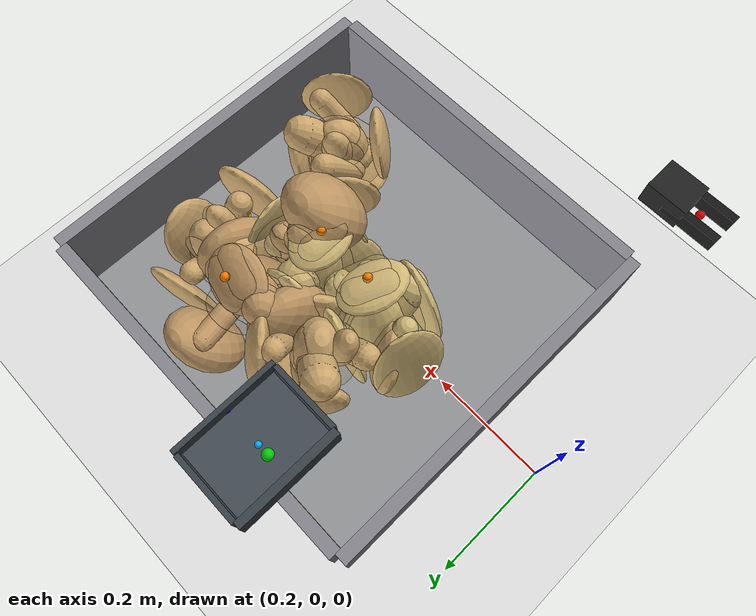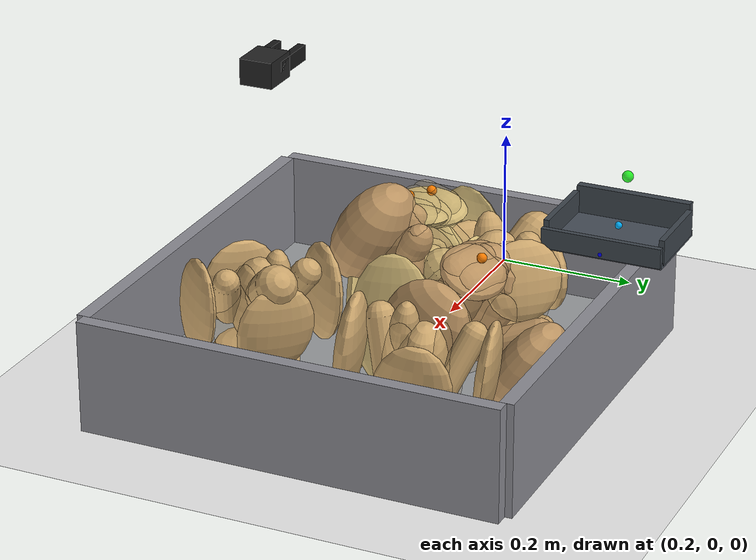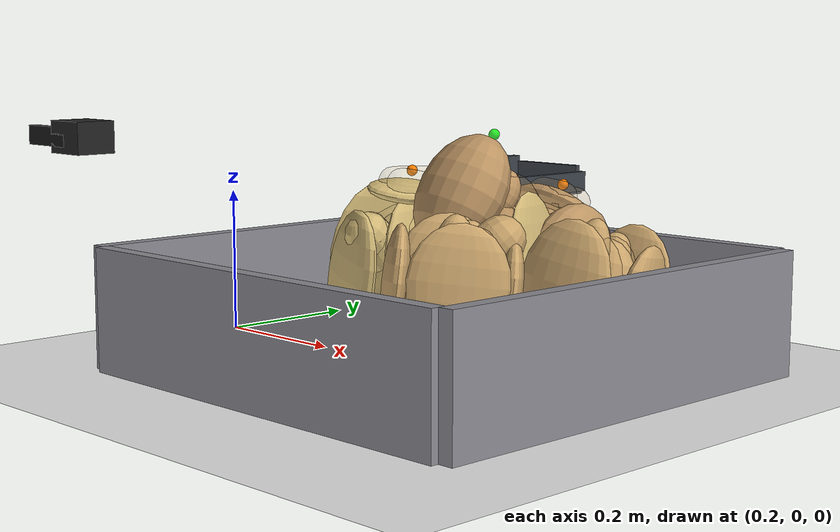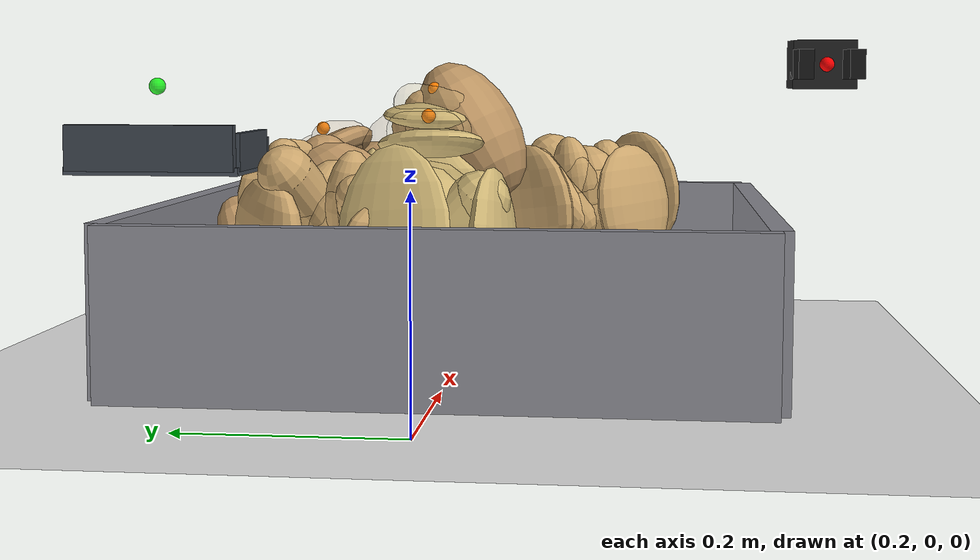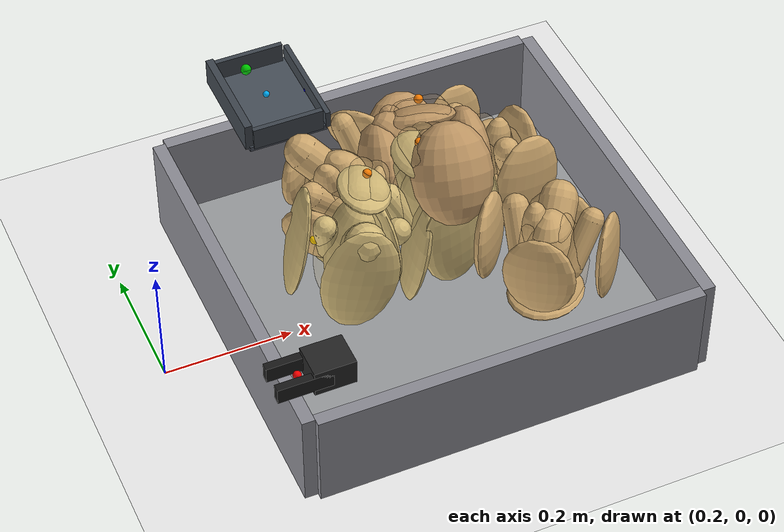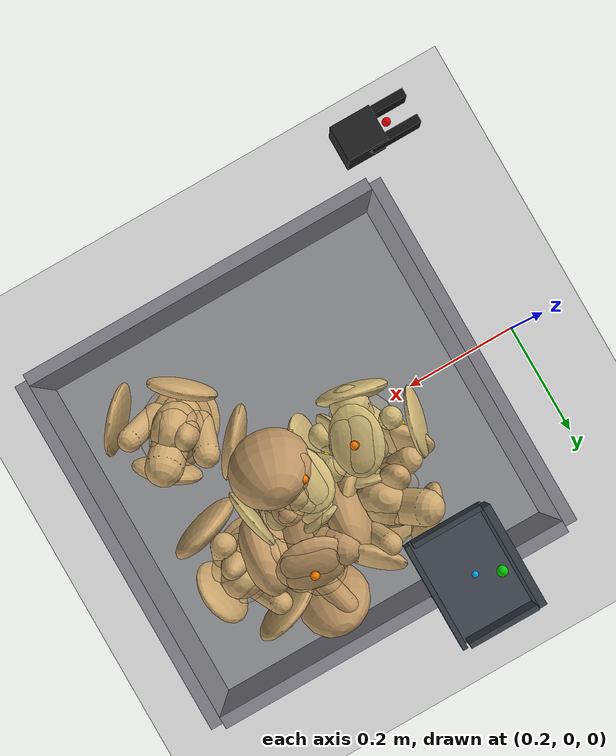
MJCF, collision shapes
<mujoco model="fixed_2f_scoop_pose_seed11">
  <compiler angle="radian" coordinate="local" inertiafromgeom="true" meshdir="D:/Michael/2025/01.Research/01.Parceldetection/16.Pybullet/bullet3-master (1)/bullet3-master/examples/pybullet/examples/DeformableTest/Sackcodex2/object"/>
  <option timestep="0.002" gravity="0 0 -9.81" integrator="implicitfast" iterations="100" tolerance="1e-8"/>
  <size memory="768M" nconmax="12000"/>

  <visual>
    <global azimuth="128" elevation="-20"/>
    <headlight ambient="0.34 0.34 0.34" diffuse="0.78 0.78 0.78" specular="0.15 0.15 0.15"/>
    <rgba haze="0.11 0.13 0.18 1"/>
  </visual>

  <default>
    <geom condim="4" friction="1.15 0.03 0.01" margin="0.003" solimp="0.93 0.98 0.003" solref="0.012 1"/>
    <joint damping="1.2" armature="0.002"/>
    <position kp="2500" forcelimited="true" forcerange="-420 420"/>
    <motor ctrllimited="true"/>
  </default>

  <asset>
    <mesh name="sack_0_visual_mesh" file="sack9.obj" scale="0.0699 0.0699 0.0762"/>
    <mesh name="sack_1_visual_mesh" file="sack.obj" scale="0.0719 0.0719 0.0732"/>
    <mesh name="sack_2_visual_mesh" file="sack7.obj" scale="0.0720 0.0720 0.0788"/>
    <mesh name="sack_3_visual_mesh" file="sack3.obj" scale="0.0765 0.0765 0.0788"/>
    <mesh name="sack_4_visual_mesh" file="sack.obj" scale="0.0688 0.0688 0.0715"/>
    <mesh name="sack_5_visual_mesh" file="sack.obj" scale="0.0686 0.0686 0.0700"/>
  </asset>

  <worldbody>
    <light name="key" pos="0.85 0.15 1.8" dir="-0.2 -0.1 -1" directional="true"/>
    <geom name="floor" type="plane" size="2 2 0.1" rgba="0.93 0.93 0.93 1"/>
    <geom name="work_pad" type="box" pos="0.62 0 0.012" size="0.30 0.30 0.012" rgba="0.60 0.61 0.62 1" friction="1.4 0.05 0.01"/>
    <geom name="corral_front" type="box" pos="0.93 0.00 0.08" size="0.010 0.30 0.08" rgba="0.55 0.55 0.58 0.22" friction="1.0 0.03 0.01"/>
    <geom name="corral_back" type="box" pos="0.31 0.00 0.08" size="0.010 0.30 0.08" rgba="0.55 0.55 0.58 0.18" friction="1.0 0.03 0.01"/>
    <geom name="corral_left" type="box" pos="0.62 0.30 0.08" size="0.30 0.010 0.08" rgba="0.55 0.55 0.58 0.14" friction="1.0 0.03 0.01"/>
    <geom name="corral_right" type="box" pos="0.62 -0.30 0.08" size="0.30 0.010 0.08" rgba="0.55 0.55 0.58 0.14" friction="1.0 0.03 0.01"/>
    <camera name="overview" pos="1.22 0.00 0.92" xyaxes="0 1 0 -0.46 0 0.88"/>

    <body name="gripper_mocap" mocap="true" pos="0.36 -0.33 0.30" quat="0.707107 0 -0.707107 0"/>
    <body name="scoop_mocap" mocap="true" pos="0.42 0.28 0.20" quat="1 0 0 0"/>

    <body name="gripper_ctrl_base" pos="0.36 -0.33 0.30">
      <inertial pos="0 0 0" mass="0.001" diaginertia="1e-6 1e-6 1e-6"/>
      <joint name="gripper_ctrl_x" type="slide" axis="1 0 0" limited="true" range="0.20 1.00"/>
      <body name="gripper_ctrl_y_body">
        <inertial pos="0 0 0" mass="0.001" diaginertia="1e-6 1e-6 1e-6"/>
        <joint name="gripper_ctrl_y" type="slide" axis="0 1 0" limited="true" range="-0.60 0.60"/>
        <body name="gripper_ctrl_z_body">
          <inertial pos="0 0 0" mass="0.001" diaginertia="1e-6 1e-6 1e-6"/>
          <joint name="gripper_ctrl_z" type="slide" axis="0 0 1" limited="true" range="0.04 0.70"/>
          <body name="gripper_ctrl_yaw_body">
            <inertial pos="0 0 0" mass="0.001" diaginertia="1e-6 1e-6 1e-6"/>
            <joint name="gripper_ctrl_yaw" type="hinge" axis="0 0 1" limited="true" range="-3.1416 3.1416"/>
            <body name="gripper_ctrl_pitch_body">
              <inertial pos="0 0 0" mass="0.001" diaginertia="1e-6 1e-6 1e-6"/>
              <joint name="gripper_ctrl_pitch" type="hinge" axis="0 1 0" limited="true" range="-3.1416 3.1416"/>
              <body name="gripper_ctrl_roll_body">
                <inertial pos="0 0 0" mass="0.001" diaginertia="1e-6 1e-6 1e-6"/>
                <joint name="gripper_ctrl_roll" type="hinge" axis="1 0 0" limited="true" range="-3.1416 3.1416"/>
              </body>
            </body>
          </body>
        </body>
      </body>
    </body>

    <body name="scoop_ctrl_base" pos="0.42 0.28 0.20">
      <inertial pos="0 0 0" mass="0.001" diaginertia="1e-6 1e-6 1e-6"/>
      <joint name="scoop_ctrl_x" type="slide" axis="1 0 0" limited="true" range="0.20 1.00"/>
      <body name="scoop_ctrl_y_body">
        <inertial pos="0 0 0" mass="0.001" diaginertia="1e-6 1e-6 1e-6"/>
        <joint name="scoop_ctrl_y" type="slide" axis="0 1 0" limited="true" range="-0.60 0.60"/>
        <body name="scoop_ctrl_z_body">
          <inertial pos="0 0 0" mass="0.001" diaginertia="1e-6 1e-6 1e-6"/>
          <joint name="scoop_ctrl_z" type="slide" axis="0 0 1" limited="true" range="0.04 0.70"/>
          <body name="scoop_ctrl_yaw_body">
            <inertial pos="0 0 0" mass="0.001" diaginertia="1e-6 1e-6 1e-6"/>
            <joint name="scoop_ctrl_yaw" type="hinge" axis="0 0 1" limited="true" range="-3.1416 3.1416"/>
            <body name="scoop_ctrl_pitch_body">
              <inertial pos="0 0 0" mass="0.001" diaginertia="1e-6 1e-6 1e-6"/>
              <joint name="scoop_ctrl_pitch" type="hinge" axis="0 1 0" limited="true" range="-3.1416 3.1416"/>
              <body name="scoop_ctrl_roll_body">
                <inertial pos="0 0 0" mass="0.001" diaginertia="1e-6 1e-6 1e-6"/>
                <joint name="scoop_ctrl_roll" type="hinge" axis="1 0 0" limited="true" range="-3.1416 3.1416"/>
              </body>
            </body>
          </body>
        </body>
      </body>
    </body>

    <body name="gripper_tool" pos="0.36 -0.33 0.30" quat="0.707107 0 -0.707107 0">
      <freejoint name="gripper_tool_free"/>
      <inertial pos="0 0 0.04" mass="0.08" diaginertia="0.0002 0.0002 0.0002"/>
      <geom name="gripper_palm" type="box" pos="0 0 0.030" size="0.020 0.026 0.030" rgba="0.14 0.14 0.14 1"/>
      <body name="left_finger_body" pos="0 0 0.072">
        <joint name="left_finger_slide" type="slide" axis="0 1 0" limited="true" range="0.010 0.040" damping="12"/>
        <geom name="left_finger_geom" type="box" pos="0 0.020 0" size="0.012 0.006 0.040" rgba="0.10 0.10 0.10 1" friction="2.2 0.05 0.01"/>
      </body>
      <body name="right_finger_body" pos="0 0 0.072">
        <joint name="right_finger_slide" type="slide" axis="0 -1 0" limited="true" range="0.010 0.040" damping="12"/>
        <geom name="right_finger_geom" type="box" pos="0 -0.020 0" size="0.012 0.006 0.040" rgba="0.10 0.10 0.10 1" friction="2.2 0.05 0.01"/>
      </body>
      <site name="gripper_pinch_site" pos="0 0 0.074" size="0.006" rgba="1 0 0 1"/>
    </body>

    <body name="scoop_tool" pos="0.42 0.28 0.20" quat="1 0 0 0">
      <freejoint name="scoop_tool_free"/>
      <inertial pos="0 0 0.02" mass="0.10" diaginertia="0.0003 0.0003 0.0003"/>
      <geom name="scoop_plate" type="box" pos="0.062 0 0" size="0.062 0.085 0.004" rgba="0.28 0.31 0.35 1" friction="1.7 0.05 0.01"/>
      <geom name="scoop_lip" type="box" pos="0.126 0 0.014" size="0.004 0.085 0.014" rgba="0.24 0.27 0.30 1" friction="1.7 0.05 0.01"/>
      <geom name="scoop_left_rail" type="box" pos="0.062 0.082 0.018" size="0.056 0.004 0.018" rgba="0.24 0.27 0.30 1"/>
      <geom name="scoop_right_rail" type="box" pos="0.062 -0.082 0.018" size="0.056 0.004 0.018" rgba="0.24 0.27 0.30 1"/>
      <geom name="scoop_backstop" type="box" pos="0.000 0 0.022" size="0.006 0.082 0.022" rgba="0.24 0.27 0.30 1"/>
      <site name="scoop_tip_site" pos="0.126 0 0.005" size="0.005" rgba="0 0 1 1"/>
      <site name="scoop_center_site" pos="0.060 0 0.020" size="0.005" rgba="0 0.7 1 1"/>
      <site name="score_overlay_site" pos="0.030 0 0.080" size="0.008" rgba="0 1 0 0.8"/>
    </body>

    <body name="sack_0" pos="0.6456 0.0425 0.1207" euler="0.0365 -0.1004 1.7669">
      <freejoint name="sack_0_free"/>

      <geom name="sack_0_visual" type="mesh" mesh="sack_0_visual_mesh" rgba="0.840 0.740 0.480 0.92" contype="0" conaffinity="0"/>
      <site name="sack_0_center_site" pos="0 0 0.000" size="0.006" rgba="0 1 0 1"/>
      <site name="sack_0_top_site" pos="-0.0009 0.0062 0.1566" size="0.007" rgba="1 0.5 0 1"/>
      <site name="sack_0_side_site" pos="-0.0022 0.0621 0.018" size="0.007" rgba="1 0.8 0 1"/>

      <geom name="sack_0_core_geom" type="ellipsoid" pos="0 0 0.0059" size="0.0517 0.0438 0.0895" mass="1.2135" rgba="0.840 0.740 0.480 0.12" friction="1.0 0.03 0.01"/>
      <geom name="sack_0_core_front" type="capsule" fromto="-0.0262 0 -0.0180 0.0478 0 0.0580" size="0.0307" mass="0.2889" rgba="0.840 0.740 0.480 0.10"/>
      <geom name="sack_0_core_left" type="capsule" fromto="-0.016 0.0345 -0.012 0.020 0.0557 0.054" size="0.0201" mass="0.5201" rgba="0.840 0.740 0.480 0.10"/>
      <geom name="sack_0_core_right" type="capsule" fromto="-0.016 -0.0345 -0.012 0.020 -0.0557 0.054" size="0.0181" mass="0.5201" rgba="0.840 0.740 0.480 0.10"/>

      <!-- 자루의 외형은 둥근 shell lobe로 보이게 하고, contact proxy는 반투명하게 숨긴다. -->
      <geom name="sack_0_shell_main_visual" type="ellipsoid" pos="-0.0011 0.0003 -0.0003" size="0.0687 0.0585 0.1024" rgba="0.840 0.740 0.480 0.16" contype="0" conaffinity="0"/>
      <geom name="sack_0_shell_left_visual" type="ellipsoid" pos="0.0040 0.0263 0.0020" size="0.0467 0.0199 0.0840" rgba="0.840 0.740 0.480 0.14" contype="0" conaffinity="0"/>
      <geom name="sack_0_shell_right_visual" type="ellipsoid" pos="0.0040 -0.0159 0.0000" size="0.0440 0.0158 0.0819" rgba="0.840 0.740 0.480 0.12" contype="0" conaffinity="0"/>
      <geom name="sack_0_top_left_crown_visual" type="capsule" fromto="-0.0219 0.0144 0.1388 0.0219 0.0072 0.1428" size="0.0196" rgba="0.840 0.740 0.480 0.14" contype="0" conaffinity="0"/>
      <geom name="sack_0_top_right_crown_visual" type="capsule" fromto="-0.0219 -0.0072 0.1428 0.0219 -0.0144 0.1388" size="0.0196" rgba="0.840 0.740 0.480 0.14" contype="0" conaffinity="0"/>

      <body name="sack_0_bottom_support_proxy_body" pos="-0.0004 0.0051 -0.1049">
        <joint name="sack_0_bottom_x" type="slide" axis="1 0 0" limited="true" range="-0.012 0.012" damping="18" stiffness="509.9"/>
        <joint name="sack_0_bottom_y" type="slide" axis="0 1 0" limited="true" range="-0.012 0.012" damping="18" stiffness="509.9"/>
        <joint name="sack_0_bottom_z" type="slide" axis="0 0 1" limited="true" range="-0.008 0.020" damping="24" stiffness="627.7"/>
        <geom name="sack_0_bottom_support_proxy" type="ellipsoid" size="0.0705 0.0600 0.0123" mass="0.2311" rgba="0.840 0.740 0.480 0.10" friction="1.55 0.05 0.01"/>
      </body>

      <body name="sack_0_top_grasp_proxy_body" pos="-0.0022 0.0062 0.1286">
        <joint name="sack_0_top_x" type="slide" axis="1 0 0" limited="true" range="-0.018 0.018" damping="12" stiffness="196.1"/>
        <joint name="sack_0_top_y" type="slide" axis="0 1 0" limited="true" range="-0.018 0.018" damping="12" stiffness="196.1"/>
        <joint name="sack_0_top_z" type="slide" axis="0 0 1" limited="true" range="-0.040 0.010" damping="14" stiffness="146.6"/>
        <geom name="sack_0_top_grasp_proxy" type="ellipsoid" size="0.0546 0.0400 0.0135" mass="0.1734" rgba="0.840 0.740 0.480 0.10" friction="2.2 0.05 0.01"/>
      </body>

      <body name="sack_0_left_side_proxy_body" pos="-0.0004 0.0963 0.010">
        <joint name="sack_0_left_side_slide" type="slide" axis="0 -1 0" limited="true" range="-0.028 0.016" damping="16" stiffness="263.0"/>
        <geom name="sack_0_left_side_proxy" type="ellipsoid" size="0.0606 0.0152 0.0969" mass="0.1734" rgba="0.840 0.740 0.480 0.08" friction="1.25 0.04 0.01"/>
      </body>

      <body name="sack_0_right_side_proxy_body" pos="-0.0004 -0.0859 0.010">
        <joint name="sack_0_right_side_slide" type="slide" axis="0 1 0" limited="true" range="-0.028 0.016" damping="16" stiffness="243.6"/>
        <geom name="sack_0_right_side_proxy" type="ellipsoid" size="0.0582 0.0118 0.0950" mass="0.1734" rgba="0.840 0.740 0.480 0.08" friction="1.25 0.04 0.01"/>
      </body>

      <body name="sack_0_front_proxy_body" pos="0.0624 0.0001 0.000">
        <joint name="sack_0_front_slide" type="slide" axis="-1 0 0" limited="true" range="-0.022 0.012" damping="15" stiffness="245.0"/>
        <geom name="sack_0_front_support_proxy" type="ellipsoid" size="0.0161 0.0580 0.0929" mass="0.1445" rgba="0.840 0.740 0.480 0.08" friction="1.20 0.04 0.01"/>
      </body>

      <body name="sack_0_back_proxy_body" pos="-0.0655 0.0001 0.000">
        <joint name="sack_0_back_slide" type="slide" axis="1 0 0" limited="true" range="-0.022 0.012" damping="15" stiffness="225.5"/>
        <geom name="sack_0_back_support_proxy" type="ellipsoid" size="0.0148 0.0580 0.0929" mass="0.1445" rgba="0.840 0.740 0.480 0.08" friction="1.20 0.04 0.01"/>
      </body>

      <body name="sack_0_shape_proxy_body" pos="-0.0013 0.0213 0.0209">
        <joint name="sack_0_bulge_y" type="slide" axis="0 1 0" limited="true" range="-0.020 0.020" damping="8" stiffness="66.7"/>
        <joint name="sack_0_bulge_z" type="slide" axis="0 0 1" limited="true" range="-0.014 0.028" damping="8" stiffness="75.0"/>
        <geom name="sack_0_shape_proxy" type="ellipsoid" size="0.0241 0.0202 0.0295" mass="0.1156" rgba="0.840 0.740 0.480 0.10"/>
      </body>
    </body>

    <body name="sack_1" pos="0.5453 0.1326 0.1396" euler="0.1709 -0.1908 2.3849">
      <freejoint name="sack_1_free"/>

      <geom name="sack_1_visual" type="mesh" mesh="sack_1_visual_mesh" rgba="0.820 0.670 0.440 0.92" contype="0" conaffinity="0"/>
      <site name="sack_1_center_site" pos="0 0 0.000" size="0.006" rgba="0 1 0 1"/>
      <site name="sack_1_top_site" pos="0.0039 0.0069 -0.0082" size="0.007" rgba="1 0.5 0 1"/>
      <site name="sack_1_side_site" pos="0.0097 0.0611 0.018" size="0.007" rgba="1 0.8 0 1"/>

      <geom name="sack_1_core_geom" type="ellipsoid" pos="0 0 0.0055" size="0.0448 0.0356 0.0627" mass="0.6674" rgba="0.820 0.670 0.440 0.12" friction="1.0 0.03 0.01"/>
      <geom name="sack_1_core_front" type="capsule" fromto="-0.0143 0 -0.0180 0.0597 0 0.0580" size="0.0282" mass="0.1589" rgba="0.820 0.670 0.440 0.10"/>
      <geom name="sack_1_core_left" type="capsule" fromto="-0.016 0.0386 -0.012 0.020 0.0651 0.054" size="0.0202" mass="0.2860" rgba="0.820 0.670 0.440 0.10"/>
      <geom name="sack_1_core_right" type="capsule" fromto="-0.016 -0.0386 -0.012 0.020 -0.0651 0.054" size="0.0182" mass="0.2860" rgba="0.820 0.670 0.440 0.10"/>

      <!-- 자루의 외형은 둥근 shell lobe로 보이게 하고, contact proxy는 반투명하게 숨긴다. -->
      <geom name="sack_1_shell_main_visual" type="ellipsoid" pos="0.0049 0.0014 -0.0276" size="0.0680 0.0553 0.0693" rgba="0.820 0.670 0.440 0.16" contype="0" conaffinity="0"/>
      <geom name="sack_1_shell_left_visual" type="ellipsoid" pos="0.0040 0.0380 0.0020" size="0.0462 0.0264 0.0568" rgba="0.820 0.670 0.440 0.14" contype="0" conaffinity="0"/>
      <geom name="sack_1_shell_right_visual" type="ellipsoid" pos="0.0040 -0.0177 0.0000" size="0.0435 0.0187 0.0554" rgba="0.820 0.670 0.440 0.12" contype="0" conaffinity="0"/>
      <geom name="sack_1_top_left_crown_visual" type="capsule" fromto="-0.0213 0.0128 -0.0475 0.0213 0.0064 -0.0435" size="0.0204" rgba="0.820 0.670 0.440 0.14" contype="0" conaffinity="0"/>
      <geom name="sack_1_top_right_crown_visual" type="capsule" fromto="-0.0213 -0.0064 -0.0435 0.0213 -0.0128 -0.0475" size="0.0204" rgba="0.820 0.670 0.440 0.14" contype="0" conaffinity="0"/>

      <body name="sack_1_bottom_support_proxy_body" pos="0.0018 -0.0061 -0.0652">
        <joint name="sack_1_bottom_x" type="slide" axis="1 0 0" limited="true" range="-0.012 0.012" damping="18" stiffness="437.0"/>
        <joint name="sack_1_bottom_y" type="slide" axis="0 1 0" limited="true" range="-0.012 0.012" damping="18" stiffness="437.0"/>
        <joint name="sack_1_bottom_z" type="slide" axis="0 0 1" limited="true" range="-0.008 0.020" damping="24" stiffness="538.6"/>
        <geom name="sack_1_bottom_support_proxy" type="ellipsoid" size="0.0692 0.0555 0.0148" mass="0.1271" rgba="0.820 0.670 0.440 0.10" friction="1.55 0.05 0.01"/>
      </body>

      <body name="sack_1_top_grasp_proxy_body" pos="0.0097 0.0070 -0.0362">
        <joint name="sack_1_top_x" type="slide" axis="1 0 0" limited="true" range="-0.018 0.018" damping="12" stiffness="167.7"/>
        <joint name="sack_1_top_y" type="slide" axis="0 1 0" limited="true" range="-0.018 0.018" damping="12" stiffness="167.7"/>
        <joint name="sack_1_top_z" type="slide" axis="0 0 1" limited="true" range="-0.040 0.010" damping="14" stiffness="122.3"/>
        <geom name="sack_1_top_grasp_proxy" type="ellipsoid" size="0.0532 0.0355 0.0311" mass="0.0953" rgba="0.820 0.670 0.440 0.10" friction="2.2 0.05 0.01"/>
      </body>

      <body name="sack_1_left_side_proxy_body" pos="0.0016 0.1034 0.010">
        <joint name="sack_1_left_side_slide" type="slide" axis="0 -1 0" limited="true" range="-0.028 0.016" damping="16" stiffness="212.9"/>
        <geom name="sack_1_left_side_proxy" type="ellipsoid" size="0.0592 0.0205 0.0572" mass="0.0953" rgba="0.820 0.670 0.440 0.08" friction="1.25 0.04 0.01"/>
      </body>

      <body name="sack_1_right_side_proxy_body" pos="0.0016 -0.0832 0.010">
        <joint name="sack_1_right_side_slide" type="slide" axis="0 1 0" limited="true" range="-0.028 0.016" damping="16" stiffness="197.5"/>
        <geom name="sack_1_right_side_proxy" type="ellipsoid" size="0.0569 0.0160 0.0561" mass="0.0953" rgba="0.820 0.670 0.440 0.08" friction="1.25 0.04 0.01"/>
      </body>

      <body name="sack_1_front_proxy_body" pos="0.0730 0.0005 0.000">
        <joint name="sack_1_front_slide" type="slide" axis="-1 0 0" limited="true" range="-0.022 0.012" damping="15" stiffness="208.5"/>
        <geom name="sack_1_front_support_proxy" type="ellipsoid" size="0.0197 0.0535 0.0532" mass="0.0795" rgba="0.820 0.670 0.440 0.08" friction="1.20 0.04 0.01"/>
      </body>

      <body name="sack_1_back_proxy_body" pos="-0.0593 0.0005 0.000">
        <joint name="sack_1_back_slide" type="slide" axis="1 0 0" limited="true" range="-0.022 0.012" damping="15" stiffness="193.1"/>
        <geom name="sack_1_back_support_proxy" type="ellipsoid" size="0.0181 0.0535 0.0532" mass="0.0795" rgba="0.820 0.670 0.440 0.08" friction="1.20 0.04 0.01"/>
      </body>

      <body name="sack_1_shape_proxy_body" pos="0.0058 0.0340 0.0420">
        <joint name="sack_1_bulge_y" type="slide" axis="0 1 0" limited="true" range="-0.020 0.020" damping="8" stiffness="115.3"/>
        <joint name="sack_1_bulge_z" type="slide" axis="0 0 1" limited="true" range="-0.014 0.028" damping="8" stiffness="111.5"/>
        <geom name="sack_1_shape_proxy" type="ellipsoid" size="0.0242 0.0205 0.0471" mass="0.0636" rgba="0.820 0.670 0.440 0.10"/>
      </body>
    </body>

    <body name="sack_2" pos="0.5142 0.0286 0.1070" euler="-0.0137 0.2185 -1.8239">
      <freejoint name="sack_2_free"/>

      <geom name="sack_2_visual" type="mesh" mesh="sack_2_visual_mesh" rgba="0.840 0.740 0.480 0.92" contype="0" conaffinity="0"/>
      <site name="sack_2_center_site" pos="0 0 0.000" size="0.006" rgba="0 1 0 1"/>
      <site name="sack_2_top_site" pos="0.0020 -0.0061 0.1449" size="0.007" rgba="1 0.5 0 1"/>
      <site name="sack_2_side_site" pos="0.0049 -0.0623 0.018" size="0.007" rgba="1 0.8 0 1"/>

      <geom name="sack_2_core_geom" type="ellipsoid" pos="0 0 0.0059" size="0.0518 0.0440 0.0898" mass="0.9698" rgba="0.840 0.740 0.480 0.12" friction="1.0 0.03 0.01"/>
      <geom name="sack_2_core_front" type="capsule" fromto="-0.0191 0 -0.0180 0.0549 0 0.0580" size="0.0308" mass="0.2309" rgba="0.840 0.740 0.480 0.10"/>
      <geom name="sack_2_core_left" type="capsule" fromto="-0.016 0.0342 -0.012 0.020 0.0551 0.054" size="0.0201" mass="0.4156" rgba="0.840 0.740 0.480 0.10"/>
      <geom name="sack_2_core_right" type="capsule" fromto="-0.016 -0.0342 -0.012 0.020 -0.0551 0.054" size="0.0181" mass="0.4156" rgba="0.840 0.740 0.480 0.10"/>

      <!-- 자루의 외형은 둥근 shell lobe로 보이게 하고, contact proxy는 반투명하게 숨긴다. -->
      <geom name="sack_2_shell_main_visual" type="ellipsoid" pos="0.0024 -0.0001 -0.0001" size="0.0688 0.0588 0.1008" rgba="0.840 0.740 0.480 0.16" contype="0" conaffinity="0"/>
      <geom name="sack_2_shell_left_visual" type="ellipsoid" pos="0.0040 0.0249 0.0020" size="0.0468 0.0195 0.0827" rgba="0.840 0.740 0.480 0.14" contype="0" conaffinity="0"/>
      <geom name="sack_2_shell_right_visual" type="ellipsoid" pos="0.0040 -0.0165 0.0000" size="0.0440 0.0156 0.0807" rgba="0.840 0.740 0.480 0.12" contype="0" conaffinity="0"/>
      <geom name="sack_2_top_left_crown_visual" type="capsule" fromto="-0.0219 0.0145 0.1272 0.0219 0.0073 0.1312" size="0.0196" rgba="0.840 0.740 0.480 0.14" contype="0" conaffinity="0"/>
      <geom name="sack_2_top_right_crown_visual" type="capsule" fromto="-0.0219 -0.0073 0.1312 0.0219 -0.0145 0.1272" size="0.0196" rgba="0.840 0.740 0.480 0.14" contype="0" conaffinity="0"/>

      <body name="sack_2_bottom_support_proxy_body" pos="0.0009 0.0135 -0.1031">
        <joint name="sack_2_bottom_x" type="slide" axis="1 0 0" limited="true" range="-0.012 0.012" damping="18" stiffness="513.7"/>
        <joint name="sack_2_bottom_y" type="slide" axis="0 1 0" limited="true" range="-0.012 0.012" damping="18" stiffness="513.7"/>
        <joint name="sack_2_bottom_z" type="slide" axis="0 0 1" limited="true" range="-0.008 0.020" damping="24" stiffness="632.3"/>
        <geom name="sack_2_bottom_support_proxy" type="ellipsoid" size="0.0706 0.0604 0.0122" mass="0.1847" rgba="0.840 0.740 0.480 0.10" friction="1.55 0.05 0.01"/>
      </body>

      <body name="sack_2_top_grasp_proxy_body" pos="0.0049 -0.0061 0.1169">
        <joint name="sack_2_top_x" type="slide" axis="1 0 0" limited="true" range="-0.018 0.018" damping="12" stiffness="197.5"/>
        <joint name="sack_2_top_y" type="slide" axis="0 1 0" limited="true" range="-0.018 0.018" damping="12" stiffness="197.5"/>
        <joint name="sack_2_top_z" type="slide" axis="0 0 1" limited="true" range="-0.040 0.010" damping="14" stiffness="147.9"/>
        <geom name="sack_2_top_grasp_proxy" type="ellipsoid" size="0.0548 0.0404 0.0134" mass="0.1385" rgba="0.840 0.740 0.480 0.10" friction="2.2 0.05 0.01"/>
      </body>

      <body name="sack_2_left_side_proxy_body" pos="0.0008 0.0952 0.010">
        <joint name="sack_2_left_side_slide" type="slide" axis="0 -1 0" limited="true" range="-0.028 0.016" damping="16" stiffness="265.6"/>
        <geom name="sack_2_left_side_proxy" type="ellipsoid" size="0.0608 0.0149 0.0951" mass="0.1385" rgba="0.840 0.740 0.480 0.08" friction="1.25 0.04 0.01"/>
      </body>

      <body name="sack_2_right_side_proxy_body" pos="0.0008 -0.0868 0.010">
        <joint name="sack_2_right_side_slide" type="slide" axis="0 1 0" limited="true" range="-0.028 0.016" damping="16" stiffness="245.9"/>
        <geom name="sack_2_right_side_proxy" type="ellipsoid" size="0.0583 0.0116 0.0932" mass="0.1385" rgba="0.840 0.740 0.480 0.08" friction="1.25 0.04 0.01"/>
      </body>

      <body name="sack_2_front_proxy_body" pos="0.0696 -0.0000 0.000">
        <joint name="sack_2_front_slide" type="slide" axis="-1 0 0" limited="true" range="-0.022 0.012" damping="15" stiffness="246.8"/>
        <geom name="sack_2_front_support_proxy" type="ellipsoid" size="0.0159 0.0584 0.0911" mass="0.1155" rgba="0.840 0.740 0.480 0.08" friction="1.20 0.04 0.01"/>
      </body>

      <body name="sack_2_back_proxy_body" pos="-0.0628 -0.0000 0.000">
        <joint name="sack_2_back_slide" type="slide" axis="1 0 0" limited="true" range="-0.022 0.012" damping="15" stiffness="227.2"/>
        <geom name="sack_2_back_support_proxy" type="ellipsoid" size="0.0146 0.0584 0.0911" mass="0.1155" rgba="0.840 0.740 0.480 0.08" friction="1.20 0.04 0.01"/>
      </body>

      <body name="sack_2_shape_proxy_body" pos="0.0029 -0.0205 0.0198">
        <joint name="sack_2_bulge_y" type="slide" axis="0 1 0" limited="true" range="-0.020 0.020" damping="8" stiffness="64.2"/>
        <joint name="sack_2_bulge_z" type="slide" axis="0 0 1" limited="true" range="-0.014 0.028" damping="8" stiffness="73.2"/>
        <geom name="sack_2_shape_proxy" type="ellipsoid" size="0.0241 0.0202 0.0294" mass="0.0924" rgba="0.840 0.740 0.480 0.10"/>
      </body>
    </body>

    <body name="sack_3" pos="0.6728 0.1162 0.1482" euler="-0.5385 0.0938 3.0491">
      <freejoint name="sack_3_free"/>

      <geom name="sack_3_visual" type="mesh" mesh="sack_3_visual_mesh" rgba="0.760 0.600 0.400 0.92" contype="0" conaffinity="0"/>
      <site name="sack_3_center_site" pos="0 0 0.000" size="0.006" rgba="0 1 0 1"/>
      <site name="sack_3_top_site" pos="0.0011 0.0019 0.0972" size="0.007" rgba="1 0.5 0 1"/>
      <site name="sack_3_side_site" pos="0.0028 0.0885 0.018" size="0.007" rgba="1 0.8 0 1"/>

      <geom name="sack_3_core_geom" type="ellipsoid" pos="0 0 0.0058" size="0.0432 0.0341 0.0743" mass="0.8187" rgba="0.760 0.600 0.400 0.12" friction="1.0 0.03 0.01"/>
      <geom name="sack_3_core_front" type="capsule" fromto="-0.0212 0 -0.0180 0.0528 0 0.0580" size="0.0287" mass="0.1949" rgba="0.760 0.600 0.400 0.10"/>
      <geom name="sack_3_core_left" type="capsule" fromto="-0.016 0.0598 -0.012 0.020 0.1136 0.054" size="0.0208" mass="0.3509" rgba="0.760 0.600 0.400 0.10"/>
      <geom name="sack_3_core_right" type="capsule" fromto="-0.016 -0.0598 -0.012 0.020 -0.1136 0.054" size="0.0186" mass="0.3509" rgba="0.760 0.600 0.400 0.10"/>

      <!-- 자루의 외형은 둥근 shell lobe로 보이게 하고, contact proxy는 반투명하게 숨긴다. -->
      <geom name="sack_3_shell_main_visual" type="ellipsoid" pos="0.0014 -0.0069 -0.0063" size="0.0714 0.0634 0.0878" rgba="0.760 0.600 0.400 0.16" contype="0" conaffinity="0"/>
      <geom name="sack_3_shell_left_visual" type="ellipsoid" pos="0.0040 0.0699 0.0020" size="0.0486 0.0597 0.0720" rgba="0.760 0.600 0.400 0.14" contype="0" conaffinity="0"/>
      <geom name="sack_3_shell_right_visual" type="ellipsoid" pos="0.0040 -0.0555 0.0000" size="0.0457 0.0339 0.0702" rgba="0.760 0.600 0.400 0.12" contype="0" conaffinity="0"/>
      <geom name="sack_3_top_left_crown_visual" type="capsule" fromto="-0.0227 0.0161 0.0747 0.0227 0.0080 0.0787" size="0.0207" rgba="0.760 0.600 0.400 0.14" contype="0" conaffinity="0"/>
      <geom name="sack_3_top_right_crown_visual" type="capsule" fromto="-0.0227 -0.0080 0.0787 0.0227 -0.0161 0.0747" size="0.0207" rgba="0.760 0.600 0.400 0.14" contype="0" conaffinity="0"/>

      <body name="sack_3_bottom_support_proxy_body" pos="0.0005 0.0057 -0.0865">
        <joint name="sack_3_bottom_x" type="slide" axis="1 0 0" limited="true" range="-0.012 0.012" damping="18" stiffness="450.2"/>
        <joint name="sack_3_bottom_y" type="slide" axis="0 1 0" limited="true" range="-0.012 0.012" damping="18" stiffness="450.2"/>
        <joint name="sack_3_bottom_z" type="slide" axis="0 0 1" limited="true" range="-0.008 0.020" damping="24" stiffness="554.7"/>
        <geom name="sack_3_bottom_support_proxy" type="ellipsoid" size="0.0724 0.0646 0.0143" mass="0.1559" rgba="0.760 0.600 0.400 0.10" friction="1.55 0.05 0.01"/>
      </body>

      <body name="sack_3_top_grasp_proxy_body" pos="0.0028 0.0012 0.0692">
        <joint name="sack_3_top_x" type="slide" axis="1 0 0" limited="true" range="-0.018 0.018" damping="12" stiffness="172.9"/>
        <joint name="sack_3_top_y" type="slide" axis="0 1 0" limited="true" range="-0.018 0.018" damping="12" stiffness="172.9"/>
        <joint name="sack_3_top_z" type="slide" axis="0 0 1" limited="true" range="-0.040 0.010" damping="14" stiffness="126.7"/>
        <geom name="sack_3_top_grasp_proxy" type="ellipsoid" size="0.0567 0.0446 0.0173" mass="0.1170" rgba="0.760 0.600 0.400 0.10" friction="2.2 0.05 0.01"/>
      </body>

      <body name="sack_3_left_side_proxy_body" pos="0.0004 0.1446 0.010">
        <joint name="sack_3_left_side_slide" type="slide" axis="0 -1 0" limited="true" range="-0.028 0.016" damping="16" stiffness="222.7"/>
        <geom name="sack_3_left_side_proxy" type="ellipsoid" size="0.0627 0.0478 0.0785" mass="0.1170" rgba="0.760 0.600 0.400 0.08" friction="1.25 0.04 0.01"/>
      </body>

      <body name="sack_3_right_side_proxy_body" pos="0.0004 -0.1302 0.010">
        <joint name="sack_3_right_side_slide" type="slide" axis="0 1 0" limited="true" range="-0.028 0.016" damping="16" stiffness="206.6"/>
        <geom name="sack_3_right_side_proxy" type="ellipsoid" size="0.0602 0.0373 0.0770" mass="0.1170" rgba="0.760 0.600 0.400 0.08" friction="1.25 0.04 0.01"/>
      </body>

      <body name="sack_3_front_proxy_body" pos="0.0695 -0.0022 0.000">
        <joint name="sack_3_front_slide" type="slide" axis="-1 0 0" limited="true" range="-0.022 0.012" damping="15" stiffness="215.1"/>
        <geom name="sack_3_front_support_proxy" type="ellipsoid" size="0.0379 0.0626 0.0745" mass="0.0975" rgba="0.760 0.600 0.400 0.08" friction="1.20 0.04 0.01"/>
      </body>

      <body name="sack_3_back_proxy_body" pos="-0.0656 -0.0022 0.000">
        <joint name="sack_3_back_slide" type="slide" axis="1 0 0" limited="true" range="-0.022 0.012" damping="15" stiffness="199.0"/>
        <geom name="sack_3_back_support_proxy" type="ellipsoid" size="0.0348 0.0626 0.0745" mass="0.0975" rgba="0.760 0.600 0.400 0.08" friction="1.20 0.04 0.01"/>
      </body>

      <body name="sack_3_shape_proxy_body" pos="0.0017 0.0880 0.0382">
        <joint name="sack_3_bulge_y" type="slide" axis="0 1 0" limited="true" range="-0.020 0.020" damping="8" stiffness="106.5"/>
        <joint name="sack_3_bulge_z" type="slide" axis="0 0 1" limited="true" range="-0.014 0.028" damping="8" stiffness="104.9"/>
        <geom name="sack_3_shape_proxy" type="ellipsoid" size="0.0250 0.0219 0.0333" mass="0.0780" rgba="0.760 0.600 0.400 0.10"/>
      </body>
    </body>

    <body name="sack_4" pos="0.7630 -0.1242 0.1428" euler="-0.1322 0.0312 0.8582">
      <freejoint name="sack_4_free"/>

      <geom name="sack_4_visual" type="mesh" mesh="sack_4_visual_mesh" rgba="0.820 0.670 0.440 0.92" contype="0" conaffinity="0"/>
      <site name="sack_4_center_site" pos="0 0 0.000" size="0.006" rgba="0 1 0 1"/>
      <site name="sack_4_top_site" pos="0.0003 0.0053 0.0146" size="0.007" rgba="1 0.5 0 1"/>
      <site name="sack_4_side_site" pos="0.0007 0.0601 0.018" size="0.007" rgba="1 0.8 0 1"/>

      <geom name="sack_4_core_geom" type="ellipsoid" pos="0 0 0.0055" size="0.0453 0.0364 0.0638" mass="0.7465" rgba="0.820 0.670 0.440 0.12" friction="1.0 0.03 0.01"/>
      <geom name="sack_4_core_front" type="capsule" fromto="-0.0233 0 -0.0180 0.0507 0 0.0580" size="0.0289" mass="0.1777" rgba="0.820 0.670 0.440 0.10"/>
      <geom name="sack_4_core_left" type="capsule" fromto="-0.016 0.0352 -0.012 0.020 0.0574 0.054" size="0.0201" mass="0.3199" rgba="0.820 0.670 0.440 0.10"/>
      <geom name="sack_4_core_right" type="capsule" fromto="-0.016 -0.0352 -0.012 0.020 -0.0574 0.054" size="0.0181" mass="0.3199" rgba="0.820 0.670 0.440 0.10"/>

      <!-- 자루의 외형은 둥근 shell lobe로 보이게 하고, contact proxy는 반투명하게 숨긴다. -->
      <geom name="sack_4_shell_main_visual" type="ellipsoid" pos="0.0003 -0.0011 -0.0247" size="0.0686 0.0568 0.0789" rgba="0.820 0.670 0.440 0.16" contype="0" conaffinity="0"/>
      <geom name="sack_4_shell_left_visual" type="ellipsoid" pos="0.0040 0.0252 0.0020" size="0.0467 0.0211 0.0647" rgba="0.820 0.670 0.440 0.14" contype="0" conaffinity="0"/>
      <geom name="sack_4_shell_right_visual" type="ellipsoid" pos="0.0040 -0.0195 0.0000" size="0.0439 0.0163 0.0631" rgba="0.820 0.670 0.440 0.12" contype="0" conaffinity="0"/>
      <geom name="sack_4_top_left_crown_visual" type="capsule" fromto="-0.0216 0.0134 -0.0224 0.0216 0.0067 -0.0184" size="0.0204" rgba="0.820 0.670 0.440 0.14" contype="0" conaffinity="0"/>
      <geom name="sack_4_top_right_crown_visual" type="capsule" fromto="-0.0216 -0.0067 -0.0184 0.0216 -0.0134 -0.0224" size="0.0204" rgba="0.820 0.670 0.440 0.14" contype="0" conaffinity="0"/>

      <body name="sack_4_bottom_support_proxy_body" pos="0.0001 0.0055 -0.0765">
        <joint name="sack_4_bottom_x" type="slide" axis="1 0 0" limited="true" range="-0.012 0.012" damping="18" stiffness="458.1"/>
        <joint name="sack_4_bottom_y" type="slide" axis="0 1 0" limited="true" range="-0.012 0.012" damping="18" stiffness="458.1"/>
        <joint name="sack_4_bottom_z" type="slide" axis="0 0 1" limited="true" range="-0.008 0.020" damping="24" stiffness="564.4"/>
        <geom name="sack_4_bottom_support_proxy" type="ellipsoid" size="0.0699 0.0573 0.0141" mass="0.1422" rgba="0.820 0.670 0.440 0.10" friction="1.55 0.05 0.01"/>
      </body>

      <body name="sack_4_top_grasp_proxy_body" pos="0.0007 0.0052 -0.0134">
        <joint name="sack_4_top_x" type="slide" axis="1 0 0" limited="true" range="-0.018 0.018" damping="12" stiffness="175.9"/>
        <joint name="sack_4_top_y" type="slide" axis="0 1 0" limited="true" range="-0.018 0.018" damping="12" stiffness="175.9"/>
        <joint name="sack_4_top_z" type="slide" axis="0 0 1" limited="true" range="-0.040 0.010" damping="14" stiffness="129.4"/>
        <geom name="sack_4_top_grasp_proxy" type="ellipsoid" size="0.0539 0.0373 0.0292" mass="0.1066" rgba="0.820 0.670 0.440 0.10" friction="2.2 0.05 0.01"/>
      </body>

      <body name="sack_4_left_side_proxy_body" pos="0.0001 0.0925 0.010">
        <joint name="sack_4_left_side_slide" type="slide" axis="0 -1 0" limited="true" range="-0.028 0.016" damping="16" stiffness="227.1"/>
        <geom name="sack_4_left_side_proxy" type="ellipsoid" size="0.0599 0.0162 0.0685" mass="0.1066" rgba="0.820 0.670 0.440 0.08" friction="1.25 0.04 0.01"/>
      </body>

      <body name="sack_4_right_side_proxy_body" pos="0.0001 -0.0867 0.010">
        <joint name="sack_4_right_side_slide" type="slide" axis="0 1 0" limited="true" range="-0.028 0.016" damping="16" stiffness="210.6"/>
        <geom name="sack_4_right_side_proxy" type="ellipsoid" size="0.0575 0.0126 0.0671" mass="0.1066" rgba="0.820 0.670 0.440 0.08" friction="1.25 0.04 0.01"/>
      </body>

      <body name="sack_4_front_proxy_body" pos="0.0646 -0.0004 0.000">
        <joint name="sack_4_front_slide" type="slide" axis="-1 0 0" limited="true" range="-0.022 0.012" damping="15" stiffness="219.1"/>
        <geom name="sack_4_front_support_proxy" type="ellipsoid" size="0.0168 0.0553 0.0645" mass="0.0889" rgba="0.820 0.670 0.440 0.08" friction="1.20 0.04 0.01"/>
      </body>

      <body name="sack_4_back_proxy_body" pos="-0.0637 -0.0004 0.000">
        <joint name="sack_4_back_slide" type="slide" axis="1 0 0" limited="true" range="-0.022 0.012" damping="15" stiffness="202.5"/>
        <geom name="sack_4_back_support_proxy" type="ellipsoid" size="0.0154 0.0553 0.0645" mass="0.0889" rgba="0.820 0.670 0.440 0.08" friction="1.20 0.04 0.01"/>
      </body>

      <body name="sack_4_shape_proxy_body" pos="0.0004 0.0224 0.0359">
        <joint name="sack_4_bulge_y" type="slide" axis="0 1 0" limited="true" range="-0.020 0.020" damping="8" stiffness="101.3"/>
        <joint name="sack_4_bulge_z" type="slide" axis="0 0 1" limited="true" range="-0.014 0.028" damping="8" stiffness="100.9"/>
        <geom name="sack_4_shape_proxy" type="ellipsoid" size="0.0241 0.0202 0.0452" mass="0.0711" rgba="0.820 0.670 0.440 0.10"/>
      </body>
    </body>

    <body name="sack_5" pos="0.7782 0.1204 0.1089" euler="-0.1744 0.1563 -2.8985">
      <freejoint name="sack_5_free"/>

      <geom name="sack_5_visual" type="mesh" mesh="sack_5_visual_mesh" rgba="0.820 0.670 0.440 0.92" contype="0" conaffinity="0"/>
      <site name="sack_5_center_site" pos="0 0 0.000" size="0.006" rgba="0 1 0 1"/>
      <site name="sack_5_top_site" pos="0.0070 0.0051 0.0024" size="0.007" rgba="1 0.5 0 1"/>
      <site name="sack_5_side_site" pos="0.0175 0.0604 0.018" size="0.007" rgba="1 0.8 0 1"/>

      <geom name="sack_5_core_geom" type="ellipsoid" pos="0 0 0.0054" size="0.0449 0.0357 0.0628" mass="0.7290" rgba="0.820 0.670 0.440 0.12" friction="1.0 0.03 0.01"/>
      <geom name="sack_5_core_front" type="capsule" fromto="-0.0065 0 -0.0180 0.0675 0 0.0580" size="0.0283" mass="0.1736" rgba="0.820 0.670 0.440 0.10"/>
      <geom name="sack_5_core_left" type="capsule" fromto="-0.016 0.0375 -0.012 0.020 0.0625 0.054" size="0.0202" mass="0.3124" rgba="0.820 0.670 0.440 0.10"/>
      <geom name="sack_5_core_right" type="capsule" fromto="-0.016 -0.0375 -0.012 0.020 -0.0625 0.054" size="0.0181" mass="0.3124" rgba="0.820 0.670 0.440 0.10"/>

      <!-- 자루의 외형은 둥근 shell lobe로 보이게 하고, contact proxy는 반투명하게 숨긴다. -->
      <geom name="sack_5_shell_main_visual" type="ellipsoid" pos="0.0088 -0.0015 -0.0313" size="0.0681 0.0555 0.0878" rgba="0.820 0.670 0.440 0.16" contype="0" conaffinity="0"/>
      <geom name="sack_5_shell_left_visual" type="ellipsoid" pos="0.0040 0.0296 0.0020" size="0.0463 0.0246 0.0720" rgba="0.820 0.670 0.440 0.14" contype="0" conaffinity="0"/>
      <geom name="sack_5_shell_right_visual" type="ellipsoid" pos="0.0040 -0.0224 0.0000" size="0.0436 0.0179 0.0702" rgba="0.820 0.670 0.440 0.12" contype="0" conaffinity="0"/>
      <geom name="sack_5_top_left_crown_visual" type="capsule" fromto="-0.0213 0.0128 -0.0398 0.0213 0.0064 -0.0358" size="0.0204" rgba="0.820 0.670 0.440 0.14" contype="0" conaffinity="0"/>
      <geom name="sack_5_top_right_crown_visual" type="capsule" fromto="-0.0213 -0.0064 -0.0358 0.0213 -0.0128 -0.0398" size="0.0204" rgba="0.820 0.670 0.440 0.14" contype="0" conaffinity="0"/>

      <body name="sack_5_bottom_support_proxy_body" pos="0.0032 0.0030 -0.0869">
        <joint name="sack_5_bottom_x" type="slide" axis="1 0 0" limited="true" range="-0.012 0.012" damping="18" stiffness="439.9"/>
        <joint name="sack_5_bottom_y" type="slide" axis="0 1 0" limited="true" range="-0.012 0.012" damping="18" stiffness="439.9"/>
        <joint name="sack_5_bottom_z" type="slide" axis="0 0 1" limited="true" range="-0.008 0.020" damping="24" stiffness="542.1"/>
        <geom name="sack_5_bottom_support_proxy" type="ellipsoid" size="0.0693 0.0557 0.0147" mass="0.1388" rgba="0.820 0.670 0.440 0.10" friction="1.55 0.05 0.01"/>
      </body>

      <body name="sack_5_top_grasp_proxy_body" pos="0.0175 0.0050 -0.0256">
        <joint name="sack_5_top_x" type="slide" axis="1 0 0" limited="true" range="-0.018 0.018" damping="12" stiffness="168.9"/>
        <joint name="sack_5_top_y" type="slide" axis="0 1 0" limited="true" range="-0.018 0.018" damping="12" stiffness="168.9"/>
        <joint name="sack_5_top_z" type="slide" axis="0 0 1" limited="true" range="-0.040 0.010" damping="14" stiffness="123.3"/>
        <geom name="sack_5_top_grasp_proxy" type="ellipsoid" size="0.0533 0.0357 0.0334" mass="0.1041" rgba="0.820 0.670 0.440 0.10" friction="2.2 0.05 0.01"/>
      </body>

      <body name="sack_5_left_side_proxy_body" pos="0.0028 0.0952 0.010">
        <joint name="sack_5_left_side_slide" type="slide" axis="0 -1 0" limited="true" range="-0.028 0.016" damping="16" stiffness="214.6"/>
        <geom name="sack_5_left_side_proxy" type="ellipsoid" size="0.0593 0.0190 0.0789" mass="0.1041" rgba="0.820 0.670 0.440 0.08" friction="1.25 0.04 0.01"/>
      </body>

      <body name="sack_5_right_side_proxy_body" pos="0.0028 -0.0881 0.010">
        <joint name="sack_5_right_side_slide" type="slide" axis="0 1 0" limited="true" range="-0.028 0.016" damping="16" stiffness="199.0"/>
        <geom name="sack_5_right_side_proxy" type="ellipsoid" size="0.0570 0.0148 0.0773" mass="0.1041" rgba="0.820 0.670 0.440 0.08" friction="1.25 0.04 0.01"/>
      </body>

      <body name="sack_5_front_proxy_body" pos="0.0808 -0.0005 0.000">
        <joint name="sack_5_front_slide" type="slide" axis="-1 0 0" limited="true" range="-0.022 0.012" damping="15" stiffness="210.0"/>
        <geom name="sack_5_front_support_proxy" type="ellipsoid" size="0.0187 0.0537 0.0749" mass="0.0868" rgba="0.820 0.670 0.440 0.08" friction="1.20 0.04 0.01"/>
      </body>

      <body name="sack_5_back_proxy_body" pos="-0.0563 -0.0005 0.000">
        <joint name="sack_5_back_slide" type="slide" axis="1 0 0" limited="true" range="-0.022 0.012" damping="15" stiffness="194.4"/>
        <geom name="sack_5_back_support_proxy" type="ellipsoid" size="0.0172 0.0537 0.0749" mass="0.0868" rgba="0.820 0.670 0.440 0.08" friction="1.20 0.04 0.01"/>
      </body>

      <body name="sack_5_shape_proxy_body" pos="0.0105 0.0285 0.0411">
        <joint name="sack_5_bulge_y" type="slide" axis="0 1 0" limited="true" range="-0.020 0.020" damping="8" stiffness="113.4"/>
        <joint name="sack_5_bulge_z" type="slide" axis="0 0 1" limited="true" range="-0.014 0.028" damping="8" stiffness="110.0"/>
        <geom name="sack_5_shape_proxy" type="ellipsoid" size="0.0242 0.0204 0.0494" mass="0.0694" rgba="0.820 0.670 0.440 0.10"/>
      </body>
    </body>
  </worldbody>

  <equality>
    <weld name="gripper_follow" body1="gripper_mocap" body2="gripper_tool" torquescale="400" solref="0.002 1" solimp="0.99 0.999 0.0001"/>
    <weld name="scoop_follow" body1="scoop_mocap" body2="scoop_tool" torquescale="500" solref="0.002 1" solimp="0.99 0.999 0.0001"/>
  </equality>

  <actuator>
    <position name="gripper_ctrl_x_act" joint="gripper_ctrl_x" ctrlrange="0.20 1.00" kp="3500" forcerange="-300 300"/>
    <position name="gripper_ctrl_y_act" joint="gripper_ctrl_y" ctrlrange="-0.60 0.60" kp="3500" forcerange="-300 300"/>
    <position name="gripper_ctrl_z_act" joint="gripper_ctrl_z" ctrlrange="0.04 0.70" kp="3500" forcerange="-300 300"/>
    <position name="gripper_ctrl_yaw_act" joint="gripper_ctrl_yaw" ctrlrange="-3.1416 3.1416" kp="1800" forcerange="-250 250"/>
    <position name="gripper_ctrl_pitch_act" joint="gripper_ctrl_pitch" ctrlrange="-3.1416 3.1416" kp="1800" forcerange="-250 250"/>
    <position name="gripper_ctrl_roll_act" joint="gripper_ctrl_roll" ctrlrange="-3.1416 3.1416" kp="1800" forcerange="-250 250"/>
    <position name="scoop_ctrl_x_act" joint="scoop_ctrl_x" ctrlrange="0.20 1.00" kp="3500" forcerange="-300 300"/>
    <position name="scoop_ctrl_y_act" joint="scoop_ctrl_y" ctrlrange="-0.60 0.60" kp="3500" forcerange="-300 300"/>
    <position name="scoop_ctrl_z_act" joint="scoop_ctrl_z" ctrlrange="0.04 0.70" kp="3500" forcerange="-300 300"/>
    <position name="scoop_ctrl_yaw_act" joint="scoop_ctrl_yaw" ctrlrange="-3.1416 3.1416" kp="1800" forcerange="-250 250"/>
    <position name="scoop_ctrl_pitch_act" joint="scoop_ctrl_pitch" ctrlrange="-3.1416 3.1416" kp="1800" forcerange="-250 250"/>
    <position name="scoop_ctrl_roll_act" joint="scoop_ctrl_roll" ctrlrange="-3.1416 3.1416" kp="1800" forcerange="-250 250"/>
    <position name="left_finger_act" joint="left_finger_slide" ctrlrange="0.010 0.040" kp="2800" forcerange="-220 220"/>
    <position name="right_finger_act" joint="right_finger_slide" ctrlrange="0.010 0.040" kp="2800" forcerange="-220 220"/>
  </actuator>

  <contact>
    <exclude body1="sack_0_top_grasp_proxy_body" body2="sack_0_left_side_proxy_body"/>
    <exclude body1="sack_0_top_grasp_proxy_body" body2="sack_0_right_side_proxy_body"/>
    <exclude body1="sack_1_top_grasp_proxy_body" body2="sack_1_left_side_proxy_body"/>
    <exclude body1="sack_1_top_grasp_proxy_body" body2="sack_1_right_side_proxy_body"/>
    <exclude body1="sack_2_top_grasp_proxy_body" body2="sack_2_left_side_proxy_body"/>
    <exclude body1="sack_2_top_grasp_proxy_body" body2="sack_2_right_side_proxy_body"/>
    <exclude body1="sack_3_top_grasp_proxy_body" body2="sack_3_left_side_proxy_body"/>
    <exclude body1="sack_3_top_grasp_proxy_body" body2="sack_3_right_side_proxy_body"/>
    <exclude body1="sack_4_top_grasp_proxy_body" body2="sack_4_left_side_proxy_body"/>
    <exclude body1="sack_4_top_grasp_proxy_body" body2="sack_4_right_side_proxy_body"/>
    <exclude body1="sack_5_top_grasp_proxy_body" body2="sack_5_left_side_proxy_body"/>
    <exclude body1="sack_5_top_grasp_proxy_body" body2="sack_5_right_side_proxy_body"/>
  </contact>
</mujoco>
